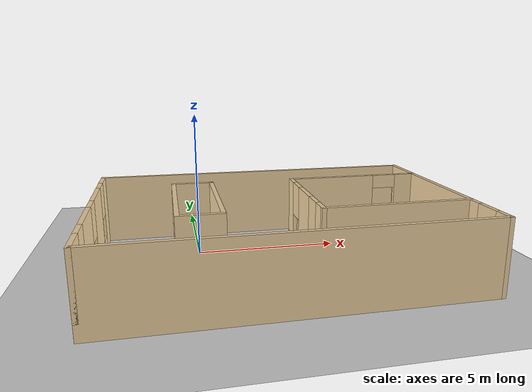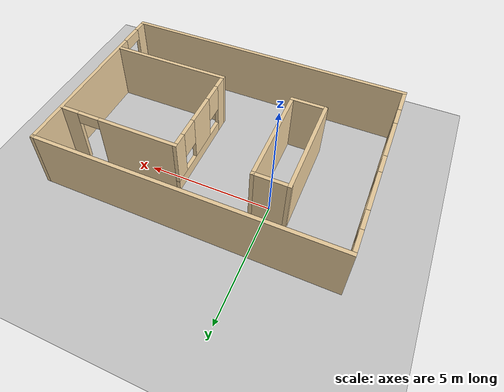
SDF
<sdf version="1.6">
 <world name="default">
  <light name="sun" type="directional">
   <pose>0 0 10 0 -0 0</pose>
   <diffuse>0.8 0.8 0.8 1</diffuse>
   <specular>0.2 0.2 0.2 1</specular>
   <attenuation>
    <range>1000</range>
    <constant>0.9</constant>
    <linear>0.01</linear>
    <quadratic>0.001</quadratic>
   </attenuation>
   <direction>-0.5 0.1 -0.9</direction>
  </light>
  <model name="ground_plane">
   <static>1</static>
   <link name="link">
    <collision name="collision">
     <geometry><plane><normal>0 0 1</normal><size>100 100</size></plane></geometry>
     <surface><friction><ode><mu>100</mu><mu2>50</mu2></ode></friction></surface>
    </collision>
    <visual name="visual">
     <cast_shadows>0</cast_shadows>
     <geometry><plane><normal>0 0 1</normal><size>100 100</size></plane></geometry>
     <material>
      <script><uri>file://media/materials/scripts/gazebo.material</uri><name>Gazebo/Grey</name></script>
     </material>
    </visual>
   </link>
  </model>
  <gravity>0 0 -9.8</gravity>
  <magnetic_field>6e-06 2.3e-05 -4.2e-05</magnetic_field>
  <atmosphere type="adiabatic"/>
  <physics name="default_physics" default="0" type="ode">
   <max_step_size>0.001</max_step_size>
   <real_time_factor>1</real_time_factor>
   <real_time_update_rate>1000</real_time_update_rate>
  </physics>
  <scene><ambient>0.4 0.4 0.4 1</ambient><background>0.7 0.7 0.7 1</background><shadows>1</shadows></scene>
  <spherical_coordinates>
   <surface_model>EARTH_WGS84</surface_model>
   <latitude_deg>0</latitude_deg>
   <longitude_deg>0</longitude_deg>
   <elevation>0</elevation>
   <heading_deg>0</heading_deg>
  </spherical_coordinates>
  <model name="Shop_Floor">
   <pose>2.53883 -1.71757 0 0 -0 0</pose>
   <link name="Wall_0">
    <pose>-5.925 0 0 0 0 -1.5708</pose>
    <visual name="Wall_0_Visual_0">
     <pose>-3.48792 0 1.25 0 -0 0</pose>
     <geometry><box><size>1.02416 0.15 2.5</size></box></geometry>
     <material>
      <script><uri>file://media/materials/scripts/gazebo.material</uri><name>Gazebo/Grey</name></script>
      <ambient>0.921569 0.807843 0.615686 1</ambient>
     </material>
     <meta><layer>0</layer></meta>
    </visual>
    <collision name="Wall_0_Collision_0">
     <geometry><box><size>1.02416 0.15 2.5</size></box></geometry>
     <pose>-3.48792 0 1.25 0 -0 0</pose>
    </collision>
    <visual name="Wall_0_Visual_1">
     <pose>0.512079 0 0.25 0 -0 0</pose>
     <geometry><box><size>6.97584 0.15 0.5</size></box></geometry>
     <material>
      <script><uri>file://media/materials/scripts/gazebo.material</uri><name>Gazebo/Grey</name></script>
      <ambient>0.921569 0.807843 0.615686 1</ambient>
     </material>
     <meta><layer>0</layer></meta>
    </visual>
    <collision name="Wall_0_Collision_1">
     <geometry><box><size>6.97584 0.15 0.5</size></box></geometry>
     <pose>0.512079 0 0.25 0 -0 0</pose>
    </collision>
    <visual name="Wall_0_Visual_2">
     <pose>-1.31522 0 1.5 0 -0 0</pose>
     <geometry><box><size>1.72124 0.15 2</size></box></geometry>
     <material>
      <script><uri>file://media/materials/scripts/gazebo.material</uri><name>Gazebo/Grey</name></script>
      <ambient>0.921569 0.807843 0.615686 1</ambient>
     </material>
     <meta><layer>0</layer></meta>
    </visual>
    <collision name="Wall_0_Collision_2">
     <geometry><box><size>1.72124 0.15 2</size></box></geometry>
     <pose>-1.31522 0 1.5 0 -0 0</pose>
    </collision>
    <visual name="Wall_0_Visual_3">
     <pose>1.22048 0 1.5 0 -0 0</pose>
     <geometry><box><size>1.75017 0.15 2</size></box></geometry>
     <material>
      <script><uri>file://media/materials/scripts/gazebo.material</uri><name>Gazebo/Grey</name></script>
      <ambient>0.921569 0.807843 0.615686 1</ambient>
     </material>
     <meta><layer>0</layer></meta>
    </visual>
    <collision name="Wall_0_Collision_3">
     <geometry><box><size>1.75017 0.15 2</size></box></geometry>
     <pose>1.22048 0 1.5 0 -0 0</pose>
    </collision>
    <visual name="Wall_0_Visual_4">
     <pose>3.44778 0 1.5 0 -0 0</pose>
     <geometry><box><size>1.10444 0.15 2</size></box></geometry>
     <material>
      <script><uri>file://media/materials/scripts/gazebo.material</uri><name>Gazebo/Grey</name></script>
      <ambient>0.921569 0.807843 0.615686 1</ambient>
     </material>
     <meta><layer>0</layer></meta>
    </visual>
    <collision name="Wall_0_Collision_4">
     <geometry><box><size>1.10444 0.15 2</size></box></geometry>
     <pose>3.44778 0 1.5 0 -0 0</pose>
    </collision>
    <visual name="Wall_0_Visual_5">
     <pose>-2.57584 0 1.9 0 -0 0</pose>
     <geometry><box><size>0.8 0.15 1.2</size></box></geometry>
     <material>
      <script><uri>file://media/materials/scripts/gazebo.material</uri><name>Gazebo/Grey</name></script>
      <ambient>0.921569 0.807843 0.615686 1</ambient>
     </material>
     <meta><layer>0</layer></meta>
    </visual>
    <collision name="Wall_0_Collision_5">
     <geometry><box><size>0.8 0.15 1.2</size></box></geometry>
     <pose>-2.57584 0 1.9 0 -0 0</pose>
    </collision>
    <visual name="Wall_0_Visual_6">
     <pose>-0.054606 0 1.9 0 -0 0</pose>
     <geometry><box><size>0.8 0.15 1.2</size></box></geometry>
     <material>
      <script><uri>file://media/materials/scripts/gazebo.material</uri><name>Gazebo/Grey</name></script>
      <ambient>0.921569 0.807843 0.615686 1</ambient>
     </material>
     <meta><layer>0</layer></meta>
    </visual>
    <collision name="Wall_0_Collision_6">
     <geometry><box><size>0.8 0.15 1.2</size></box></geometry>
     <pose>-0.054606 0 1.9 0 -0 0</pose>
    </collision>
    <visual name="Wall_0_Visual_7">
     <pose>2.49556 0 1.9 0 -0 0</pose>
     <geometry><box><size>0.8 0.15 1.2</size></box></geometry>
     <material>
      <script><uri>file://media/materials/scripts/gazebo.material</uri><name>Gazebo/Grey</name></script>
      <ambient>0.921569 0.807843 0.615686 1</ambient>
     </material>
     <meta><layer>0</layer></meta>
    </visual>
    <collision name="Wall_0_Collision_7">
     <geometry><box><size>0.8 0.15 1.2</size></box></geometry>
     <pose>2.49556 0 1.9 0 -0 0</pose>
    </collision>
   </link>
   <link name="Wall_1">
    <collision name="Wall_1_Collision">
     <geometry><box><size>12 0.15 2.5</size></box></geometry>
     <pose>0 0 1.25 0 -0 0</pose>
    </collision>
    <visual name="Wall_1_Visual">
     <pose>0 0 1.25 0 -0 0</pose>
     <geometry><box><size>12 0.15 2.5</size></box></geometry>
     <material>
      <script><uri>file://media/materials/scripts/gazebo.material</uri><name>Gazebo/Grey</name></script>
      <ambient>0.921569 0.807843 0.615686 1</ambient>
     </material>
     <meta><layer>0</layer></meta>
    </visual>
    <pose>0 -3.925 0 0 -0 0</pose>
   </link>
   <link name="Wall_2">
    <pose>5.925 0 0 0 -0 1.5708</pose>
    <visual name="Wall_2_Visual_0">
     <pose>-3.66386 0 1.25 0 -0 0</pose>
     <geometry><box><size>0.672281 0.15 2.5</size></box></geometry>
     <material>
      <script><uri>file://media/materials/scripts/gazebo.material</uri><name>Gazebo/Grey</name></script>
      <ambient>0.921569 0.807843 0.615686 1</ambient>
     </material>
     <meta><layer>0</layer></meta>
    </visual>
    <collision name="Wall_2_Collision_0">
     <geometry><box><size>0.672281 0.15 2.5</size></box></geometry>
     <pose>-3.66386 0 1.25 0 -0 0</pose>
    </collision>
    <visual name="Wall_2_Visual_1">
     <pose>0.786141 0 1.25 0 -0 0</pose>
     <geometry><box><size>6.42772 0.15 2.5</size></box></geometry>
     <material>
      <script><uri>file://media/materials/scripts/gazebo.material</uri><name>Gazebo/Grey</name></script>
      <ambient>0.921569 0.807843 0.615686 1</ambient>
     </material>
     <meta><layer>0</layer></meta>
    </visual>
    <collision name="Wall_2_Collision_1">
     <geometry><box><size>6.42772 0.15 2.5</size></box></geometry>
     <pose>0.786141 0 1.25 0 -0 0</pose>
    </collision>
    <visual name="Wall_2_Visual_2">
     <pose>-2.87772 0 2.25 0 -0 0</pose>
     <geometry><box><size>0.9 0.15 0.5</size></box></geometry>
     <material>
      <script><uri>file://media/materials/scripts/gazebo.material</uri><name>Gazebo/Grey</name></script>
      <ambient>0.921569 0.807843 0.615686 1</ambient>
     </material>
     <meta><layer>0</layer></meta>
    </visual>
    <collision name="Wall_2_Collision_2">
     <geometry><box><size>0.9 0.15 0.5</size></box></geometry>
     <pose>-2.87772 0 2.25 0 -0 0</pose>
    </collision>
   </link>
   <link name="Wall_20">
    <collision name="Wall_20_Collision">
     <geometry><box><size>4.25 0.15 2.5</size></box></geometry>
     <pose>0 0 1.25 0 -0 0</pose>
    </collision>
    <visual name="Wall_20_Visual">
     <pose>0 0 1.25 0 -0 0</pose>
     <geometry><box><size>4.25 0.15 2.5</size></box></geometry>
     <material>
      <script><uri>file://media/materials/scripts/gazebo.material</uri><name>Gazebo/Grey</name></script>
      <ambient>0.921569 0.807843 0.615686 1</ambient>
     </material>
     <meta><layer>0</layer></meta>
    </visual>
    <pose>-1.99427 0.226904 0 0 -0 1.5708</pose>
   </link>
   <link name="Wall_21">
    <collision name="Wall_21_Collision">
     <geometry><box><size>1.5 0.15 2.5</size></box></geometry>
     <pose>0 0 1.25 0 -0 0</pose>
    </collision>
    <visual name="Wall_21_Visual">
     <pose>0 0 1.25 0 -0 0</pose>
     <geometry><box><size>1.5 0.15 2.5</size></box></geometry>
     <material>
      <script><uri>file://media/materials/scripts/gazebo.material</uri><name>Gazebo/Grey</name></script>
      <ambient>0.921569 0.807843 0.615686 1</ambient>
     </material>
     <meta><layer>0</layer></meta>
    </visual>
    <pose>-2.66927 2.2769 0 0 -0 3.14159</pose>
   </link>
   <link name="Wall_22">
    <collision name="Wall_22_Collision">
     <geometry><box><size>4.25 0.15 2.5</size></box></geometry>
     <pose>0 0 1.25 0 -0 0</pose>
    </collision>
    <visual name="Wall_22_Visual">
     <pose>0 0 1.25 0 -0 0</pose>
     <geometry><box><size>4.25 0.15 2.5</size></box></geometry>
     <material>
      <script><uri>file://media/materials/scripts/gazebo.material</uri><name>Gazebo/Grey</name></script>
      <ambient>0.921569 0.807843 0.615686 1</ambient>
     </material>
     <meta><layer>0</layer></meta>
    </visual>
    <pose>-3.34427 0.226904 0 0 0 -1.5708</pose>
   </link>
   <link name="Wall_23">
    <collision name="Wall_23_Collision">
     <geometry><box><size>1.5 0.15 2.5</size></box></geometry>
     <pose>0 0 1.25 0 -0 0</pose>
    </collision>
    <visual name="Wall_23_Visual">
     <pose>0 0 1.25 0 -0 0</pose>
     <geometry><box><size>1.5 0.15 2.5</size></box></geometry>
     <material>
      <script><uri>file://media/materials/scripts/gazebo.material</uri><name>Gazebo/Grey</name></script>
      <ambient>0.921569 0.807843 0.615686 1</ambient>
     </material>
     <meta><layer>0</layer></meta>
    </visual>
    <pose>-2.66927 -1.8231 0 0 -0 0</pose>
   </link>
   <link name="Wall_25">
    <collision name="Wall_25_Collision">
     <geometry><box><size>5.04563 0.15 2.5</size></box></geometry>
     <pose>0 0 1.25 0 -0 0</pose>
    </collision>
    <visual name="Wall_25_Visual">
     <pose>0 0 1.25 0 -0 0</pose>
     <geometry><box><size>5.04563 0.15 2.5</size></box></geometry>
     <material>
      <script><uri>file://media/materials/scripts/gazebo.material</uri><name>Gazebo/Grey</name></script>
      <ambient>0.921569 0.807843 0.615686 1</ambient>
     </material>
     <meta><layer>0</layer></meta>
    </visual>
    <pose>3.45851 -1.89064 0 0 -0 3.14159</pose>
   </link>
   <link name="Wall_28">
    <pose>1.0107 0.159355 0 0 -0 1.5708</pose>
    <visual name="Wall_28_Visual_0">
     <pose>-1.77536 0 1.25 0 -0 0</pose>
     <geometry><box><size>0.699283 0.15 2.5</size></box></geometry>
     <material>
      <script><uri>file://media/materials/scripts/gazebo.material</uri><name>Gazebo/Grey</name></script>
      <ambient>0.921569 0.807843 0.615686 1</ambient>
     </material>
     <meta><layer>0</layer></meta>
    </visual>
    <collision name="Wall_28_Collision_0">
     <geometry><box><size>0.699283 0.15 2.5</size></box></geometry>
     <pose>-1.77536 0 1.25 0 -0 0</pose>
    </collision>
    <visual name="Wall_28_Visual_1">
     <pose>0.349641 0 0.25 0 -0 0</pose>
     <geometry><box><size>3.55072 0.15 0.5</size></box></geometry>
     <material>
      <script><uri>file://media/materials/scripts/gazebo.material</uri><name>Gazebo/Grey</name></script>
      <ambient>0.921569 0.807843 0.615686 1</ambient>
     </material>
     <meta><layer>0</layer></meta>
    </visual>
    <collision name="Wall_28_Collision_1">
     <geometry><box><size>3.55072 0.15 0.5</size></box></geometry>
     <pose>0.349641 0 0.25 0 -0 0</pose>
    </collision>
    <visual name="Wall_28_Visual_2">
     <pose>0.020189 0 1.5 0 -0 0</pose>
     <geometry><box><size>1.29181 0.15 2</size></box></geometry>
     <material>
      <script><uri>file://media/materials/scripts/gazebo.material</uri><name>Gazebo/Grey</name></script>
      <ambient>0.921569 0.807843 0.615686 1</ambient>
     </material>
     <meta><layer>0</layer></meta>
    </visual>
    <collision name="Wall_28_Collision_2">
     <geometry><box><size>1.29181 0.15 2</size></box></geometry>
     <pose>0.020189 0 1.5 0 -0 0</pose>
    </collision>
    <visual name="Wall_28_Visual_3">
     <pose>1.79555 0 1.5 0 -0 0</pose>
     <geometry><box><size>0.658906 0.15 2</size></box></geometry>
     <material>
      <script><uri>file://media/materials/scripts/gazebo.material</uri><name>Gazebo/Grey</name></script>
      <ambient>0.921569 0.807843 0.615686 1</ambient>
     </material>
     <meta><layer>0</layer></meta>
    </visual>
    <collision name="Wall_28_Collision_3">
     <geometry><box><size>0.658906 0.15 2</size></box></geometry>
     <pose>1.79555 0 1.5 0 -0 0</pose>
    </collision>
    <visual name="Wall_28_Visual_4">
     <pose>-1.02572 0 1.9 0 -0 0</pose>
     <geometry><box><size>0.8 0.15 1.2</size></box></geometry>
     <material>
      <script><uri>file://media/materials/scripts/gazebo.material</uri><name>Gazebo/Grey</name></script>
      <ambient>0.921569 0.807843 0.615686 1</ambient>
     </material>
     <meta><layer>0</layer></meta>
    </visual>
    <collision name="Wall_28_Collision_4">
     <geometry><box><size>0.8 0.15 1.2</size></box></geometry>
     <pose>-1.02572 0 1.9 0 -0 0</pose>
    </collision>
    <visual name="Wall_28_Visual_5">
     <pose>1.06609 0 1.9 0 -0 0</pose>
     <geometry><box><size>0.8 0.15 1.2</size></box></geometry>
     <material>
      <script><uri>file://media/materials/scripts/gazebo.material</uri><name>Gazebo/Grey</name></script>
      <ambient>0.921569 0.807843 0.615686 1</ambient>
     </material>
     <meta><layer>0</layer></meta>
    </visual>
    <collision name="Wall_28_Collision_5">
     <geometry><box><size>0.8 0.15 1.2</size></box></geometry>
     <pose>1.06609 0 1.9 0 -0 0</pose>
    </collision>
   </link>
   <link name="Wall_29">
    <pose>3.4357 2.20935 0 0 -0 0</pose>
    <visual name="Wall_29_Visual_0">
     <pose>-0.847857 0 1.25 0 -0 0</pose>
     <geometry><box><size>3.30429 0.15 2.5</size></box></geometry>
     <material>
      <script><uri>file://media/materials/scripts/gazebo.material</uri><name>Gazebo/Grey</name></script>
      <ambient>0.921569 0.807843 0.615686 1</ambient>
     </material>
     <meta><layer>0</layer></meta>
    </visual>
    <collision name="Wall_29_Collision_0">
     <geometry><box><size>3.30429 0.15 2.5</size></box></geometry>
     <pose>-0.847857 0 1.25 0 -0 0</pose>
    </collision>
    <visual name="Wall_29_Visual_1">
     <pose>2.10214 0 1.25 0 -0 0</pose>
     <geometry><box><size>0.795714 0.15 2.5</size></box></geometry>
     <material>
      <script><uri>file://media/materials/scripts/gazebo.material</uri><name>Gazebo/Grey</name></script>
      <ambient>0.921569 0.807843 0.615686 1</ambient>
     </material>
     <meta><layer>0</layer></meta>
    </visual>
    <collision name="Wall_29_Collision_1">
     <geometry><box><size>0.795714 0.15 2.5</size></box></geometry>
     <pose>2.10214 0 1.25 0 -0 0</pose>
    </collision>
    <visual name="Wall_29_Visual_2">
     <pose>1.25429 0 2.25 0 -0 0</pose>
     <geometry><box><size>0.9 0.15 0.5</size></box></geometry>
     <material>
      <script><uri>file://media/materials/scripts/gazebo.material</uri><name>Gazebo/Grey</name></script>
      <ambient>0.921569 0.807843 0.615686 1</ambient>
     </material>
     <meta><layer>0</layer></meta>
    </visual>
    <collision name="Wall_29_Collision_2">
     <geometry><box><size>0.9 0.15 0.5</size></box></geometry>
     <pose>1.25429 0 2.25 0 -0 0</pose>
    </collision>
   </link>
   <link name="Wall_3">
    <collision name="Wall_3_Collision">
     <geometry><box><size>12 0.15 2.5</size></box></geometry>
     <pose>0 0 1.25 0 -0 0</pose>
    </collision>
    <visual name="Wall_3_Visual">
     <pose>0 0 1.25 0 -0 0</pose>
     <geometry><box><size>12 0.15 2.5</size></box></geometry>
     <material>
      <script><uri>file://media/materials/scripts/gazebo.material</uri><name>Gazebo/Grey</name></script>
      <ambient>0.921569 0.807843 0.615686 1</ambient>
     </material>
     <meta><layer>0</layer></meta>
    </visual>
    <pose>0 3.925 0 0 -0 3.14159</pose>
   </link>
   <static>1</static>
  </model>
  <model name="my_ball">
   <link name="link">
    <inertial>
     <mass>1</mass>
     <inertia><ixx>0.1</ixx><ixy>0</ixy><ixz>0</ixz><iyy>0.1</iyy><iyz>0</iyz><izz>0.1</izz></inertia>
    </inertial>
    <visual name="visual">
     <geometry><sphere><radius>0.1</radius></sphere></geometry>
     <material>
      <script><name>Gazebo/Grey</name><uri>file://media/materials/scripts/gazebo.material</uri></script>
      <ambient>1 1 1 1</ambient>
      <diffuse>1 1 1 1</diffuse>
      <specular>1 1 1 1</specular>
      <emissive>1 1 1 1</emissive>
      <shader type="vertex"><normal_map>__default__</normal_map></shader>
     </material>
    </visual>
    <collision name="collision">
     <geometry><sphere><radius>0.1</radius></sphere></geometry>
     <surface>
      <friction>
       <ode><mu>1</mu><mu2>1</mu2><fdir1>0 0 0</fdir1><slip1>0</slip1><slip2>0</slip2></ode>
       <torsional>
        <coefficient>1</coefficient>
        <patch_radius>0</patch_radius>
        <surface_radius>0</surface_radius>
        <use_patch_radius>1</use_patch_radius>
        <ode><slip>0</slip></ode>
       </torsional>
      </friction>
      <bounce><restitution_coefficient>0</restitution_coefficient><threshold>1e+06</threshold></bounce>
      <contact>
       <collide_without_contact>0</collide_without_contact>
       <collide_without_contact_bitmask>1</collide_without_contact_bitmask>
       <collide_bitmask>1</collide_bitmask>
       <ode>
        <soft_cfm>0</soft_cfm>
        <soft_erp>0.2</soft_erp>
        <kp>1e+13</kp>
        <kd>1</kd>
        <max_vel>0.01</max_vel>
        <min_depth>0</min_depth>
       </ode>
       <bullet>
        <split_impulse>1</split_impulse>
        <split_impulse_penetration_threshold>-0.01</split_impulse_penetration_threshold>
        <soft_cfm>0</soft_cfm>
        <soft_erp>0.2</soft_erp>
        <kp>1e+13</kp>
        <kd>1</kd>
       </bullet>
      </contact>
     </surface>
    </collision>
   </link>
   <static>0</static>
   <pose>8.80018 -3.56032 0.1 0 -0 0</pose>
  </model>
  <model name="bookshelf">
   <static>1</static>
   <link name="link">
    <inertial><mass>1</mass></inertial>
    <collision name="back">
     <pose>0 0.005 0.6 0 -0 0</pose>
     <geometry><box><size>0.9 0.01 1.2</size></box></geometry>
    </collision>
    <visual name="visual1">
     <pose>0 0.005 0.6 0 -0 0</pose>
     <geometry><box><size>0.9 0.01 1.2</size></box></geometry>
     <material>
      <script><uri>file://media/materials/scripts/gazebo.material</uri><name>Gazebo/Wood</name></script>
     </material>
    </visual>
    <collision name="left_side">
     <pose>0.45 -0.195 0.6 0 -0 0</pose>
     <geometry><box><size>0.02 0.4 1.2</size></box></geometry>
    </collision>
    <visual name="visual2">
     <pose>0.45 -0.195 0.6 0 -0 0</pose>
     <geometry><box><size>0.02 0.4 1.2</size></box></geometry>
     <material>
      <script><uri>file://media/materials/scripts/gazebo.material</uri><name>Gazebo/Wood</name></script>
     </material>
    </visual>
    <collision name="right_side">
     <pose>-0.45 -0.195 0.6 0 -0 0</pose>
     <geometry><box><size>0.02 0.4 1.2</size></box></geometry>
    </collision>
    <visual name="visual3">
     <pose>-0.45 -0.195 0.6 0 -0 0</pose>
     <geometry><box><size>0.02 0.4 1.2</size></box></geometry>
     <material>
      <script><uri>file://media/materials/scripts/gazebo.material</uri><name>Gazebo/Wood</name></script>
     </material>
    </visual>
    <collision name="bottom">
     <pose>0 -0.195 0.03 0 -0 0</pose>
     <geometry><box><size>0.88 0.4 0.06</size></box></geometry>
    </collision>
    <visual name="visual4">
     <pose>0 -0.195 0.03 0 -0 0</pose>
     <geometry><box><size>0.88 0.4 0.06</size></box></geometry>
     <material>
      <script><uri>file://media/materials/scripts/gazebo.material</uri><name>Gazebo/Wood</name></script>
     </material>
    </visual>
    <collision name="top">
     <pose>0 -0.195 1.19 0 -0 0</pose>
     <geometry><box><size>0.88 0.4 0.02</size></box></geometry>
    </collision>
    <visual name="visual5">
     <pose>0 -0.195 1.19 0 -0 0</pose>
     <geometry><box><size>0.88 0.4 0.02</size></box></geometry>
     <material>
      <script><uri>file://media/materials/scripts/gazebo.material</uri><name>Gazebo/Wood</name></script>
     </material>
    </visual>
    <collision name="low_shelf">
     <pose>0 -0.195 0.43 0 -0 0</pose>
     <geometry><box><size>0.88 0.4 0.02</size></box></geometry>
    </collision>
    <visual name="visual6">
     <pose>0 -0.195 0.43 0 -0 0</pose>
     <geometry><box><size>0.88 0.4 0.02</size></box></geometry>
     <material>
      <script><uri>file://media/materials/scripts/gazebo.material</uri><name>Gazebo/Wood</name></script>
     </material>
    </visual>
    <collision name="high_shelf">
     <pose>0 -0.195 0.8 0 -0 0</pose>
     <geometry><box><size>0.88 0.4 0.02</size></box></geometry>
    </collision>
    <visual name="visual7">
     <pose>0 -0.195 0.8 0 -0 0</pose>
     <geometry><box><size>0.88 0.4 0.02</size></box></geometry>
     <material>
      <script><uri>file://media/materials/scripts/gazebo.material</uri><name>Gazebo/Wood</name></script>
     </material>
    </visual>
   </link>
   <pose>4.34452 0.240569 0 0 -0 0</pose>
  </model>
 </world>
</sdf>
